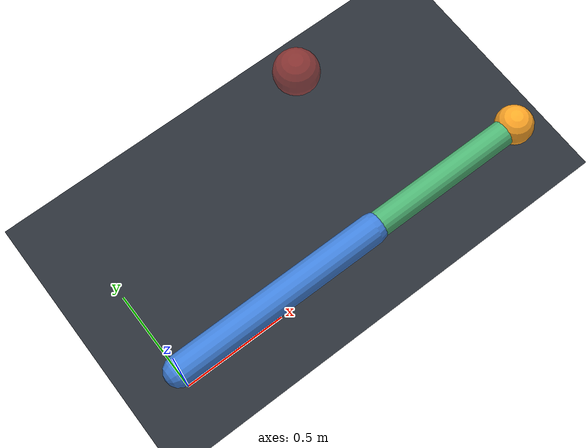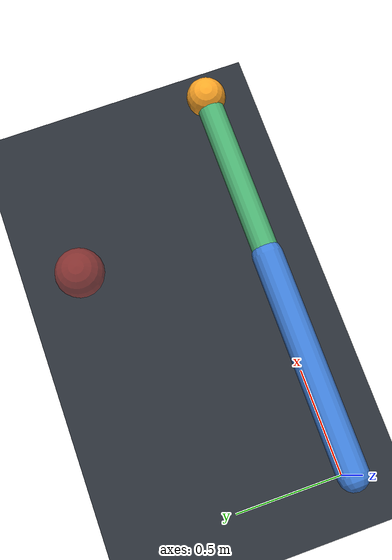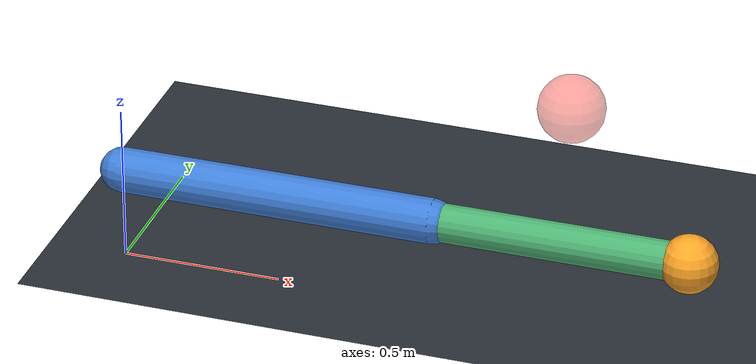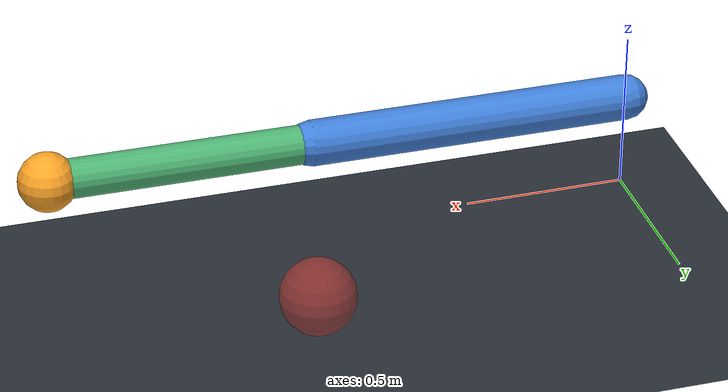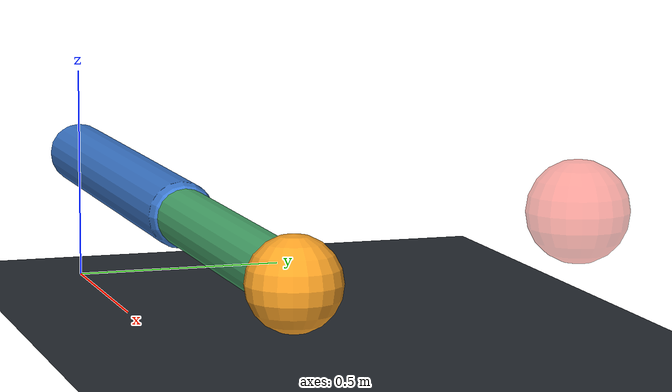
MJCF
<mujoco model="IK arm">
  <option gravity="0 0 0"/>
  <visual><headlight ambient=".25 .25 .25" diffuse=".75 .75 .75"/></visual>
  <worldbody>
    <geom type="plane" size="3 3 .1" rgba=".16 .18 .21 1"/>
    <site name="goal" pos="1.2 .8 .3" size=".11" rgba="1 .25 .2 .45"/>
    <body name="shoulder" pos="0 0 .3">
      <joint name="shoulder" type="hinge" axis="0 0 1" range="-170 170"/>
      <geom type="capsule" fromto="0 0 0 1 0 0" size=".07" rgba=".25 .5 .85 1"/>
      <body name="elbow" pos="1 0 0">
        <joint name="elbow" type="hinge" axis="0 0 1" range="-170 170"/>
        <geom type="capsule" fromto="0 0 0 .8 0 0" size=".06" rgba=".3 .7 .45 1"/>
        <site name="hand" pos=".8 0 0" size=".09" rgba="1 .65 .15 1"/>
      </body>
    </body>
  </worldbody>
</mujoco>
